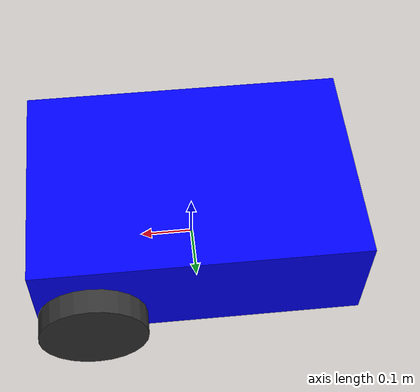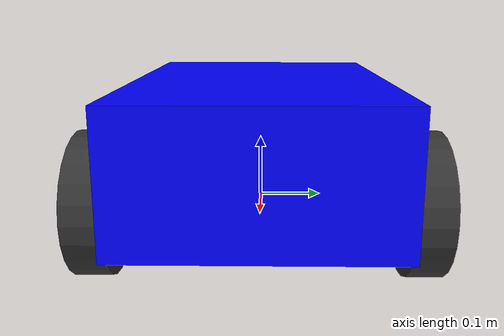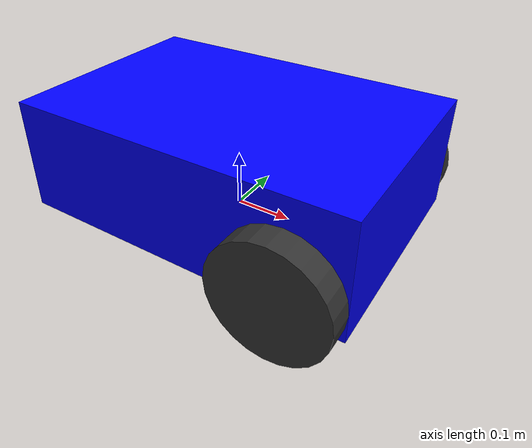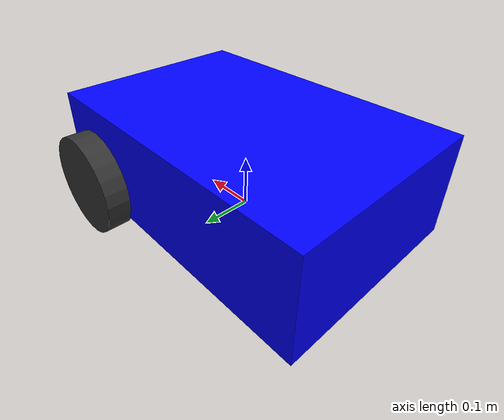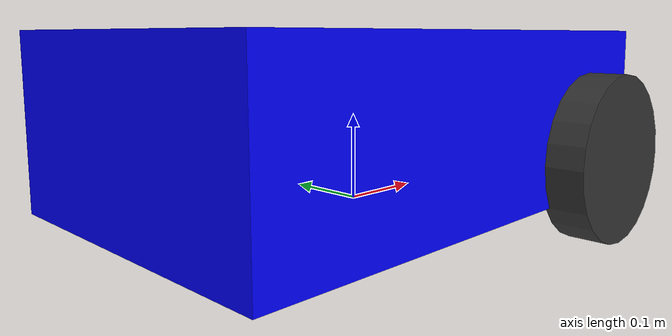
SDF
<?xml version="1.0"?>
<sdf version="1.6">
  <model name="diff_drive_robot">
    <pose>0 0 0.1 0 0 0</pose>
    <link name="base_link">
      <inertial>
        <mass>5.0</mass>
        <inertia>
          <ixx>0.04</ixx>
          <ixy>0.0</ixy>
          <ixz>0.0</ixz>
          <iyy>0.1</iyy>
          <iyz>0.0</iyz>
          <izz>0.04</izz>
        </inertia>
      </inertial>
      <collision name="collision">
        <geometry>
          <box><size>0.6 0.4 0.2</size></box>
        </geometry>
      </collision>
      <visual name="visual">
        <geometry>
          <box><size>0.6 0.4 0.2</size></box>
        </geometry>
        <material>
          <ambient>0.0 0.0 1.0 1.0</ambient>
          <diffuse>0.0 0.0 1.0 1.0</diffuse>
        </material>
      </visual>
    </link>

    <link name="left_wheel_link">
      <pose>0.2 0.22 -0.05 0 1.5707 1.5707</pose>
      <inertial><mass>1</mass></inertial>
      <collision name="collision">
        <geometry><cylinder><radius>0.1</radius><length>0.05</length></cylinder></geometry>
      </collision>
      <visual name="visual">
        <geometry><cylinder><radius>0.1</radius><length>0.05</length></cylinder></geometry>
        <material><ambient>0.2 0.2 0.2 1</ambient><diffuse>0.2 0.2 0.2 1</diffuse></material>
      </visual>
    </link>

    <link name="right_wheel_link">
      <pose>0.2 -0.22 -0.05 0 1.5707 1.5707</pose>
      <inertial><mass>1</mass></inertial>
      <collision name="collision">
        <geometry><cylinder><radius>0.1</radius><length>0.05</length></cylinder></geometry>
      </collision>
      <visual name="visual">
        <geometry><cylinder><radius>0.1</radius><length>0.05</length></cylinder></geometry>
        <material><ambient>0.2 0.2 0.2 1</ambient><diffuse>0.2 0.2 0.2 1</diffuse></material>
      </visual>
    </link>

    <joint name="left_wheel_joint" type="revolute">
      <parent>base_link</parent>
      <child>left_wheel_link</child>
      <axis><xyz>0 0 1</xyz></axis>
    </joint>

    <joint name="right_wheel_joint" type="revolute">
      <parent>base_link</parent>
      <child>right_wheel_link</child>
      <axis><xyz>0 0 1</xyz></axis>
    </joint>

    <!-- Gazebo ROS Diff Drive Plugin -->
    <plugin name="gazebo_ros_diff_drive" filename="libgazebo_ros_diff_drive.so">
      <ros>
      </ros>

      <!-- Update rate in Hz -->
      <update_rate>30</update_rate>

      <!-- wheels -->
      <left_joint>left_wheel_joint</left_joint>
      <right_joint>right_wheel_joint</right_joint>

      <!-- kinematics -->
      <wheel_separation>0.44</wheel_separation> <!-- Distance between center of wheels -->
      <wheel_diameter>0.2</wheel_diameter> <!-- Diameter of the wheels -->

      <!-- limits -->
      <max_wheel_torque>20</max_wheel_torque>
      <max_wheel_acceleration>1.0</max_wheel_acceleration>

      <!-- output -->
      <publish_odom>true</publish_odom>
      <publish_odom_tf>true</publish_odom_tf>
      <publish_wheel_tf>false</publish_wheel_tf> <!-- Usually handled by robot_state_publisher -->

      <odometry_frame>odom</odometry_frame>
      <robot_base_frame>base_link</robot_base_frame>

      <!-- Topic names -->
      <command_topic>cmd_vel</command_topic>
      <odometry_topic>odom</odometry_topic>

    </plugin>
  </model>
</sdf>
